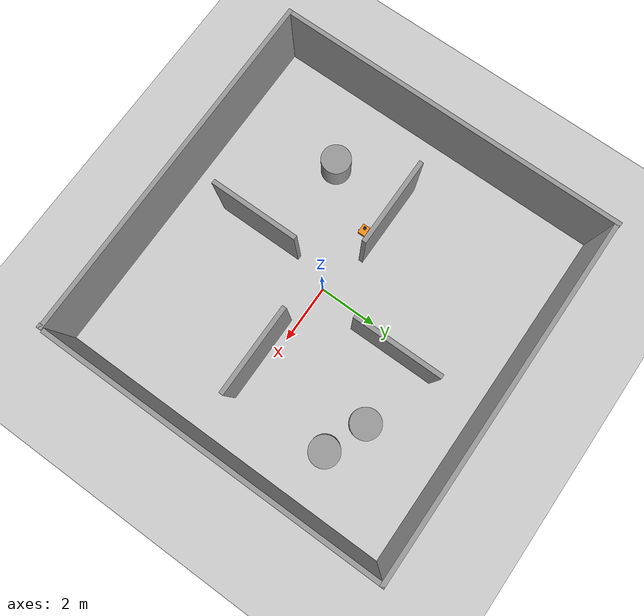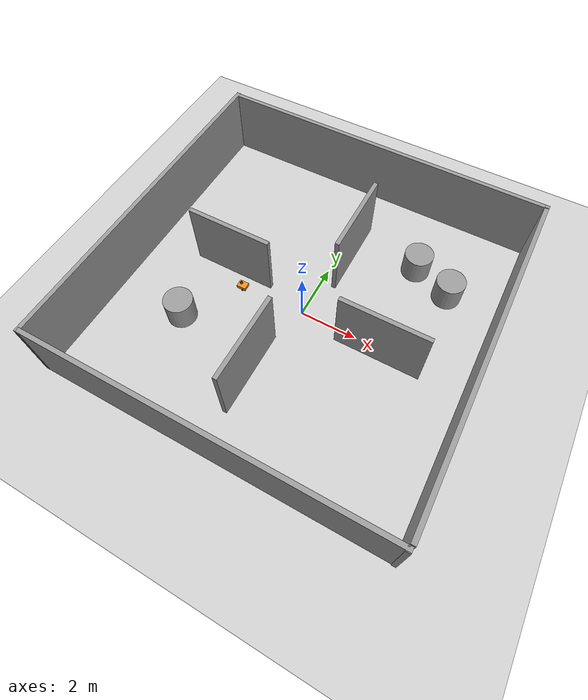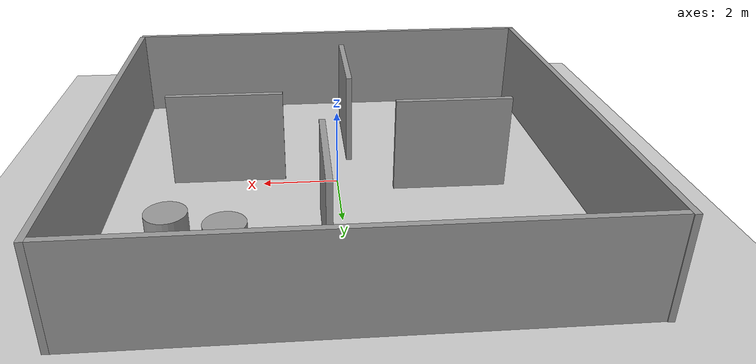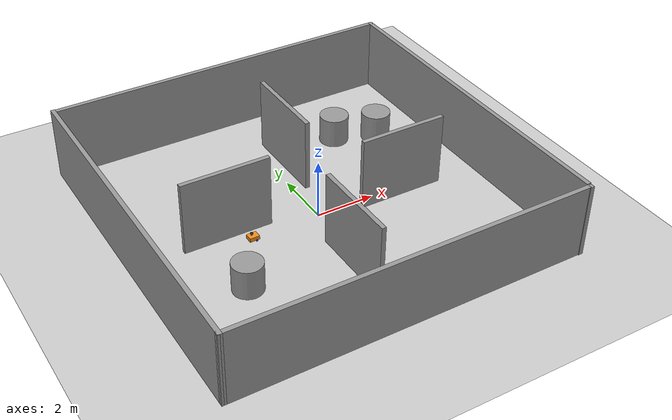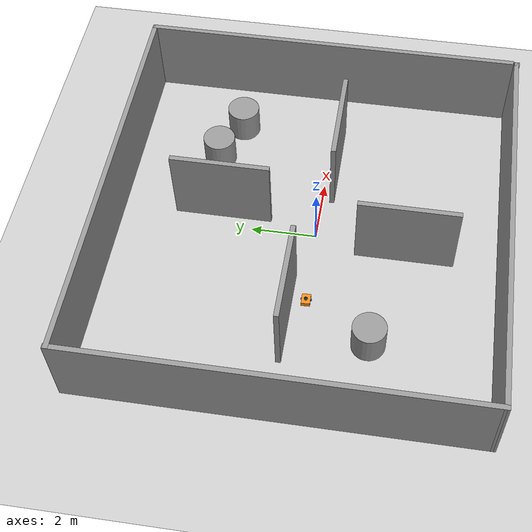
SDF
<sdf version="1.7">
 <world name="default">
  <light name="sun" type="directional">
   <pose>0 0 10 0 -0 0</pose>
   <diffuse>0.8 0.8 0.8 1</diffuse>
   <specular>0.2 0.2 0.2 1</specular>
   <attenuation>
    <range>1000</range>
    <constant>0.9</constant>
    <linear>0.01</linear>
    <quadratic>0.001</quadratic>
   </attenuation>
   <direction>-0.5 0.1 -0.9</direction>
   <spot><inner_angle>0</inner_angle><outer_angle>0</outer_angle><falloff>0</falloff></spot>
  </light>
  <model name="ground_plane">
   <static>1</static>
   <link name="link">
    <collision name="collision">
     <geometry><plane><normal>0 0 1</normal><size>100 100</size></plane></geometry>
     <surface><friction><ode><mu>100</mu><mu2>50</mu2></ode></friction></surface>
    </collision>
    <visual name="visual">
     <cast_shadows>0</cast_shadows>
     <geometry><plane><normal>0 0 1</normal><size>100 100</size></plane></geometry>
     <material>
      <script><uri>file://media/materials/scripts/gazebo.material</uri><name>Gazebo/Grey</name></script>
     </material>
    </visual>
   </link>
  </model>
  <gravity>0 0 -9.8</gravity>
  <magnetic_field>6e-06 2.3e-05 -4.2e-05</magnetic_field>
  <atmosphere type="adiabatic"/>
  <physics type="ode">
   <max_step_size>0.001</max_step_size>
   <real_time_factor>1</real_time_factor>
   <real_time_update_rate>1000</real_time_update_rate>
  </physics>
  <scene><ambient>0.4 0.4 0.4 1</ambient><background>0.7 0.7 0.7 1</background><shadows>1</shadows></scene>
  <audio><device>default</device></audio>
  <spherical_coordinates>
   <surface_model>EARTH_WGS84</surface_model>
   <latitude_deg>0</latitude_deg>
   <longitude_deg>0</longitude_deg>
   <elevation>0</elevation>
   <heading_deg>0</heading_deg>
  </spherical_coordinates>
  <model name="my_bot">
   <link name="base_link">
    <inertial>
     <pose>-0.067475 0 0.081098 0 -0 0</pose>
     <mass>0.61</mass>
     <inertia>
      <ixx>0.00561003</ixx>
      <ixy>0</ixy>
      <ixz>0.000453811</ixz>
      <iyy>0.00760348</iyy>
      <iyz>0</iyz>
      <izz>0.00797093</izz>
     </inertia>
    </inertial>
    <collision name="base_link_fixed_joint_lump__chassis_collision">
     <pose>-0.0585 0 0.059 0 -0 0</pose>
     <geometry><box><size>0.335 0.265 0.138</size></box></geometry>
    </collision>
    <collision name="base_link_fixed_joint_lump__caster_wheel_collision_1">
     <pose>-0.151 0 -0.023 0 -0 0</pose>
     <geometry><sphere><radius>0.01</radius></sphere></geometry>
     <surface><friction><ode><mu>0.001</mu><mu2>0.001</mu2></ode></friction></surface>
    </collision>
    <collision name="base_link_fixed_joint_lump__laser_frame_collision_2">
     <pose>-0.104 0 0.202 0 -0 0</pose>
     <geometry><cylinder><length>0.04</length><radius>0.05</radius></cylinder></geometry>
    </collision>
    <visual name="base_link_fixed_joint_lump__chassis_visual">
     <pose>-0.0585 0 0.059 0 -0 0</pose>
     <geometry><box><size>0.335 0.265 0.138</size></box></geometry>
     <material>
      <script><name>Gazebo/Orange</name><uri>file://media/materials/scripts/gazebo.material</uri></script>
     </material>
    </visual>
    <visual name="base_link_fixed_joint_lump__caster_wheel_visual_1">
     <pose>-0.151 0 -0.023 0 -0 0</pose>
     <geometry><sphere><radius>0.01</radius></sphere></geometry>
     <material>
      <script><name>Gazebo/White</name><uri>file://media/materials/scripts/gazebo.material</uri></script>
     </material>
    </visual>
    <visual name="base_link_fixed_joint_lump__face_link_visual_2">
     <pose>0.109 0.05 0.069 3.14159 1.57079 3.14159</pose>
     <geometry><cylinder><length>0.002</length><radius>0.01</radius></cylinder></geometry>
     <material>
      <script><name>Gazebo/Black</name><uri>file://media/materials/scripts/gazebo.material</uri></script>
     </material>
    </visual>
    <visual name="base_link_fixed_joint_lump__face_link_visual_3">
     <pose>0.109 -0.05 0.069 3.14159 1.57079 3.14159</pose>
     <geometry><cylinder><length>0.002</length><radius>0.01</radius></cylinder></geometry>
     <material>
      <script><name>Gazebo/Black</name><uri>file://media/materials/scripts/gazebo.material</uri></script>
     </material>
    </visual>
    <visual name="base_link_fixed_joint_lump__face_link_visual_4">
     <pose>0.098 0 0.059 0 1.5 0</pose>
     <geometry><cylinder><length>0.02</length><radius>0.05</radius></cylinder></geometry>
     <material>
      <script><name>Gazebo/Black</name><uri>file://media/materials/scripts/gazebo.material</uri></script>
     </material>
    </visual>
    <visual name="base_link_fixed_joint_lump__laser_frame_visual_5">
     <pose>-0.104 0 0.202 0 -0 0</pose>
     <geometry><cylinder><length>0.04</length><radius>0.05</radius></cylinder></geometry>
     <material>
      <script><name>Gazebo/Black</name><uri>file://media/materials/scripts/gazebo.material</uri></script>
     </material>
    </visual>
    <visual name="base_link_fixed_joint_lump__laser_frame_visual_6">
     <pose>-0.104 0 0.152 0 -0 0</pose>
     <geometry><cylinder><length>0.1</length><radius>0.01</radius></cylinder></geometry>
     <material>
      <script><name>Gazebo/Black</name><uri>file://media/materials/scripts/gazebo.material</uri></script>
     </material>
    </visual>
    <sensor name="laser" type="ray">
     <visualize>0</visualize>
     <update_rate>10</update_rate>
     <ray>
      <scan>
       <horizontal>
        <samples>360</samples>
        <min_angle>-3.14</min_angle>
        <max_angle>3.14</max_angle>
        <resolution>1</resolution>
       </horizontal>
       <vertical><samples>1</samples><min_angle>0</min_angle><max_angle>0</max_angle></vertical>
      </scan>
      <range><min>0.3</min><max>12</max></range>
     </ray>
     <plugin name="laser_controller" filename="libgazebo_ros_ray_sensor.so">
      <ros><argument>~/out:=scan</argument></ros>
      <output_type>sensor_msgs/LaserScan</output_type>
      <frame_name>laser_frame</frame_name>
     </plugin>
     <pose>-0.104 0 0.202 0 -0 0</pose>
    </sensor>
   </link>
   <joint name="left_wheel_joint" type="revolute">
    <pose relative_to="base_link">0 0.1485 0 -1.5708 0 0</pose>
    <parent>base_link</parent>
    <child>left_wheel</child>
    <axis>
     <xyz>0 0 1</xyz>
     <limit><lower>-1e+16</lower><upper>1e+16</upper></limit>
     <dynamics><spring_reference>0</spring_reference><spring_stiffness>0</spring_stiffness></dynamics>
    </axis>
   </joint>
   <link name="left_wheel">
    <pose relative_to="left_wheel_joint">0 0 0 0 -0 0</pose>
    <inertial>
     <mass>0.05</mass>
     <inertia>
      <ixx>1.64292e-05</ixx>
      <ixy>0</ixy>
      <ixz>0</ixz>
      <iyy>1.64292e-05</iyy>
      <iyz>0</iyz>
      <izz>2.7225e-05</izz>
     </inertia>
    </inertial>
    <collision name="left_wheel_collision">
     <geometry><sphere><radius>0.033</radius></sphere></geometry>
    </collision>
    <visual name="left_wheel_visual">
     <geometry><cylinder><length>0.026</length><radius>0.033</radius></cylinder></geometry>
     <material>
      <script><name>Gazebo/Blue</name><uri>file://media/materials/scripts/gazebo.material</uri></script>
     </material>
    </visual>
   </link>
   <joint name="right_wheel_joint" type="revolute">
    <pose relative_to="base_link">0 -0.1485 0 1.5708 -0 0</pose>
    <parent>base_link</parent>
    <child>right_wheel</child>
    <axis>
     <xyz>0 0 -1</xyz>
     <limit><lower>-1e+16</lower><upper>1e+16</upper></limit>
     <dynamics><spring_reference>0</spring_reference><spring_stiffness>0</spring_stiffness></dynamics>
    </axis>
   </joint>
   <link name="right_wheel">
    <pose relative_to="right_wheel_joint">0 0 0 0 -0 0</pose>
    <inertial>
     <mass>0.05</mass>
     <inertia>
      <ixx>1.64292e-05</ixx>
      <ixy>0</ixy>
      <ixz>0</ixz>
      <iyy>1.64292e-05</iyy>
      <iyz>0</iyz>
      <izz>2.7225e-05</izz>
     </inertia>
    </inertial>
    <collision name="right_wheel_collision">
     <geometry><sphere><radius>0.033</radius></sphere></geometry>
    </collision>
    <visual name="right_wheel_visual">
     <geometry><cylinder><length>0.026</length><radius>0.033</radius></cylinder></geometry>
     <material>
      <script><name>Gazebo/Blue</name><uri>file://media/materials/scripts/gazebo.material</uri></script>
     </material>
    </visual>
   </link>
   <static>0</static>
   <plugin name="gazebo_ros2_control" filename="libgazebo_ros2_control.so">
    <parameters>/root/Capstone/ros2_ws/install/capstone/share/capstone/config/my_controllers.yaml</parameters>
    <parameters>/root/Capstone/ros2_ws/install/capstone/share/capstone/config/gaz_ros2_ctl_use_sim.yaml</parameters>
   </plugin>
   <pose>-2.29861 -0.033958 0.032997 -1.7e-05 1.8e-05 0.023703</pose>
  </model>
  <model name="my_wrold">
   <pose>-0.157998 0.278963 0 0 -0 0</pose>
   <link name="Wall_0">
    <collision name="Wall_0_Collision">
     <geometry><box><size>12.208 0.15 2.5</size></box></geometry>
     <pose>0 0 1.25 0 -0 0</pose>
    </collision>
    <visual name="Wall_0_Visual">
     <pose>0 0 1.25 0 -0 0</pose>
     <geometry><box><size>12.208 0.15 2.5</size></box></geometry>
     <material>
      <script><uri>file://media/materials/scripts/gazebo.material</uri><name>Gazebo/Grey</name></script>
      <ambient>1 1 1 1</ambient>
     </material>
     <meta><layer>0</layer></meta>
    </visual>
    <pose>-0.020881 -5.89822 0 0 -0 0.004414</pose>
   </link>
   <link name="Wall_1">
    <collision name="Wall_1_Collision">
     <geometry><box><size>0.15 0.15 2.5</size></box></geometry>
     <pose>0 0 1.25 0 -0 0</pose>
    </collision>
    <visual name="Wall_1_Visual">
     <pose>0 0 1.25 0 -0 0</pose>
     <geometry><box><size>0.15 0.15 2.5</size></box></geometry>
     <material>
      <script><uri>file://media/materials/scripts/gazebo.material</uri><name>Gazebo/Grey</name></script>
      <ambient>1 1 1 1</ambient>
     </material>
     <meta><layer>0</layer></meta>
    </visual>
    <pose>6.00807 -5.89474 0 0 -0 0</pose>
   </link>
   <link name="Wall_12">
    <collision name="Wall_12_Collision">
     <geometry><box><size>3 0.15 2.5</size></box></geometry>
     <pose>0 0 1.25 0 -0 0</pose>
    </collision>
    <visual name="Wall_12_Visual">
     <pose>0 0 1.25 0 -0 0</pose>
     <geometry><box><size>3 0.15 2.5</size></box></geometry>
     <material>
      <script><uri>file://media/materials/scripts/gazebo.material</uri><name>Gazebo/Grey</name></script>
      <ambient>1 1 1 1</ambient>
     </material>
     <meta><layer>0</layer></meta>
    </visual>
    <pose>3.05791 -0.583276 0 0 -0 3.14159</pose>
   </link>
   <link name="Wall_14">
    <collision name="Wall_14_Collision">
     <geometry><box><size>3 0.15 2.5</size></box></geometry>
     <pose>0 0 1.25 0 -0 0</pose>
    </collision>
    <visual name="Wall_14_Visual">
     <pose>0 0 1.25 0 -0 0</pose>
     <geometry><box><size>3 0.15 2.5</size></box></geometry>
     <material>
      <script><uri>file://media/materials/scripts/gazebo.material</uri><name>Gazebo/Grey</name></script>
      <ambient>1 1 1 1</ambient>
     </material>
     <meta><layer>0</layer></meta>
    </visual>
    <pose>-2.80978 0.173245 0 0 -0 3.14159</pose>
   </link>
   <link name="Wall_16">
    <collision name="Wall_16_Collision">
     <geometry><box><size>3 0.15 2.5</size></box></geometry>
     <pose>0 0 1.25 0 -0 0</pose>
    </collision>
    <visual name="Wall_16_Visual">
     <pose>0 0 1.25 0 -0 0</pose>
     <geometry><box><size>3 0.15 2.5</size></box></geometry>
     <material>
      <script><uri>file://media/materials/scripts/gazebo.material</uri><name>Gazebo/Grey</name></script>
      <ambient>1 1 1 1</ambient>
     </material>
     <meta><layer>0</layer></meta>
    </visual>
    <pose>0.61516 2.68464 0 0 -0 1.5708</pose>
   </link>
   <link name="Wall_18">
    <collision name="Wall_18_Collision">
     <geometry><box><size>3 0.15 2.5</size></box></geometry>
     <pose>0 0 1.25 0 -0 0</pose>
    </collision>
    <visual name="Wall_18_Visual">
     <pose>0 0 1.25 0 -0 0</pose>
     <geometry><box><size>3 0.15 2.5</size></box></geometry>
     <material>
      <script><uri>file://media/materials/scripts/gazebo.material</uri><name>Gazebo/Grey</name></script>
      <ambient>1 1 1 1</ambient>
     </material>
     <meta><layer>0</layer></meta>
    </visual>
    <pose>-0.257811 -3.01436 0 0 -0 -1.5708</pose>
   </link>
   <link name="Wall_5">
    <collision name="Wall_5_Collision">
     <geometry><box><size>12 0.15 2.5</size></box></geometry>
     <pose>0 0 1.25 0 -0 0</pose>
    </collision>
    <visual name="Wall_5_Visual">
     <pose>0 0 1.25 0 -0 0</pose>
     <geometry><box><size>12 0.15 2.5</size></box></geometry>
     <material>
      <script><uri>file://media/materials/scripts/gazebo.material</uri><name>Gazebo/Grey</name></script>
      <ambient>1 1 1 1</ambient>
     </material>
     <meta><layer>0</layer></meta>
    </visual>
    <pose>-6.04983 0.000165 0 0 -0 1.5708</pose>
   </link>
   <link name="Wall_6">
    <collision name="Wall_6_Collision">
     <geometry><box><size>12.25 0.15 2.5</size></box></geometry>
     <pose>0 0 1.25 0 -0 0</pose>
    </collision>
    <visual name="Wall_6_Visual">
     <pose>0 0 1.25 0 -0 0</pose>
     <geometry><box><size>12.25 0.15 2.5</size></box></geometry>
     <material>
      <script><uri>file://media/materials/scripts/gazebo.material</uri><name>Gazebo/Grey</name></script>
      <ambient>1 1 1 1</ambient>
     </material>
     <meta><layer>0</layer></meta>
    </visual>
    <pose>0.000165 5.90203 0 0 -0 0</pose>
   </link>
   <link name="Wall_7">
    <collision name="Wall_7_Collision">
     <geometry><box><size>11.75 0.15 2.5</size></box></geometry>
     <pose>0 0 1.25 0 -0 0</pose>
    </collision>
    <visual name="Wall_7_Visual">
     <pose>0 0 1.25 0 -0 0</pose>
     <geometry><box><size>11.75 0.15 2.5</size></box></geometry>
     <material>
      <script><uri>file://media/materials/scripts/gazebo.material</uri><name>Gazebo/Grey</name></script>
      <ambient>1 1 1 1</ambient>
     </material>
     <meta><layer>0</layer></meta>
    </visual>
    <pose>6.05016 0.102034 0 0 -0 -1.5708</pose>
   </link>
   <static>1</static>
  </model>
  <model name="Untitled">
   <link name="link_0">
    <inertial>
     <mass>1</mass>
     <inertia><ixx>0.145833</ixx><ixy>0</ixy><ixz>0</ixz><iyy>0.145833</iyy><iyz>0</iyz><izz>0.125</izz></inertia>
    </inertial>
    <pose>-4.6356 -3.49433 0 0 -0 0</pose>
    <visual name="visual">
     <geometry><cylinder><radius>0.5</radius><length>1</length></cylinder></geometry>
     <material>
      <lighting>1</lighting>
      <script><uri>file://media/materials/scripts/gazebo.material</uri><name>Gazebo/Grey</name></script>
      <shader type="pixel"/>
     </material>
    </visual>
    <collision name="collision">
     <geometry><cylinder><radius>0.5</radius><length>1</length></cylinder></geometry>
     <surface>
      <friction>
       <ode><mu>1</mu><mu2>1</mu2><fdir1>0 0 0</fdir1><slip1>0</slip1><slip2>0</slip2></ode>
       <torsional>
        <coefficient>1</coefficient>
        <patch_radius>0</patch_radius>
        <surface_radius>0</surface_radius>
        <use_patch_radius>1</use_patch_radius>
        <ode><slip>0</slip></ode>
       </torsional>
      </friction>
      <bounce><restitution_coefficient>0</restitution_coefficient><threshold>1e+06</threshold></bounce>
      <contact>
       <collide_without_contact>0</collide_without_contact>
       <collide_without_contact_bitmask>1</collide_without_contact_bitmask>
       <collide_bitmask>1</collide_bitmask>
       <ode>
        <soft_cfm>0</soft_cfm>
        <soft_erp>0.2</soft_erp>
        <kp>1e+13</kp>
        <kd>1</kd>
        <max_vel>0.01</max_vel>
        <min_depth>0</min_depth>
       </ode>
       <bullet>
        <split_impulse>1</split_impulse>
        <split_impulse_penetration_threshold>-0.01</split_impulse_penetration_threshold>
        <soft_cfm>0</soft_cfm>
        <soft_erp>0.2</soft_erp>
        <kp>1e+13</kp>
        <kd>1</kd>
       </bullet>
      </contact>
     </surface>
    </collision>
   </link>
   <link name="link_1">
    <inertial>
     <mass>1</mass>
     <inertia><ixx>0.145833</ixx><ixy>0</ixy><ixz>0</ixz><iyy>0.145833</iyy><iyz>0</iyz><izz>0.125</izz></inertia>
    </inertial>
    <pose>1.63693 2.01821 0 0 -0 0</pose>
    <visual name="visual">
     <geometry><cylinder><radius>0.5</radius><length>1</length></cylinder></geometry>
     <material>
      <lighting>1</lighting>
      <script><uri>file://media/materials/scripts/gazebo.material</uri><name>Gazebo/Grey</name></script>
      <shader type="pixel"/>
     </material>
    </visual>
    <collision name="collision">
     <geometry><cylinder><radius>0.5</radius><length>1</length></cylinder></geometry>
     <surface>
      <friction>
       <ode><mu>1</mu><mu2>1</mu2><fdir1>0 0 0</fdir1><slip1>0</slip1><slip2>0</slip2></ode>
       <torsional>
        <coefficient>1</coefficient>
        <patch_radius>0</patch_radius>
        <surface_radius>0</surface_radius>
        <use_patch_radius>1</use_patch_radius>
        <ode><slip>0</slip></ode>
       </torsional>
      </friction>
      <bounce><restitution_coefficient>0</restitution_coefficient><threshold>1e+06</threshold></bounce>
      <contact>
       <collide_without_contact>0</collide_without_contact>
       <collide_without_contact_bitmask>1</collide_without_contact_bitmask>
       <collide_bitmask>1</collide_bitmask>
       <ode>
        <soft_cfm>0</soft_cfm>
        <soft_erp>0.2</soft_erp>
        <kp>1e+13</kp>
        <kd>1</kd>
        <max_vel>0.01</max_vel>
        <min_depth>0</min_depth>
       </ode>
       <bullet>
        <split_impulse>1</split_impulse>
        <split_impulse_penetration_threshold>-0.01</split_impulse_penetration_threshold>
        <soft_cfm>0</soft_cfm>
        <soft_erp>0.2</soft_erp>
        <kp>1e+13</kp>
        <kd>1</kd>
       </bullet>
      </contact>
     </surface>
    </collision>
   </link>
   <link name="link_2">
    <inertial>
     <mass>1</mass>
     <inertia><ixx>0.145833</ixx><ixy>0</ixy><ixz>0</ixz><iyy>0.145833</iyy><iyz>0</iyz><izz>0.125</izz></inertia>
    </inertial>
    <pose>2.99867 1.47613 0 0 -0 0</pose>
    <visual name="visual">
     <geometry><cylinder><radius>0.5</radius><length>1</length></cylinder></geometry>
     <material>
      <lighting>1</lighting>
      <script><uri>file://media/materials/scripts/gazebo.material</uri><name>Gazebo/Grey</name></script>
      <shader type="pixel"/>
     </material>
    </visual>
    <collision name="collision">
     <geometry><cylinder><radius>0.5</radius><length>1</length></cylinder></geometry>
     <surface>
      <friction>
       <ode><mu>1</mu><mu2>1</mu2><fdir1>0 0 0</fdir1><slip1>0</slip1><slip2>0</slip2></ode>
       <torsional>
        <coefficient>1</coefficient>
        <patch_radius>0</patch_radius>
        <surface_radius>0</surface_radius>
        <use_patch_radius>1</use_patch_radius>
        <ode><slip>0</slip></ode>
       </torsional>
      </friction>
      <bounce><restitution_coefficient>0</restitution_coefficient><threshold>1e+06</threshold></bounce>
      <contact>
       <collide_without_contact>0</collide_without_contact>
       <collide_without_contact_bitmask>1</collide_without_contact_bitmask>
       <collide_bitmask>1</collide_bitmask>
       <ode>
        <soft_cfm>0</soft_cfm>
        <soft_erp>0.2</soft_erp>
        <kp>1e+13</kp>
        <kd>1</kd>
        <max_vel>0.01</max_vel>
        <min_depth>0</min_depth>
       </ode>
       <bullet>
        <split_impulse>1</split_impulse>
        <split_impulse_penetration_threshold>-0.01</split_impulse_penetration_threshold>
        <soft_cfm>0</soft_cfm>
        <soft_erp>0.2</soft_erp>
        <kp>1e+13</kp>
        <kd>1</kd>
       </bullet>
      </contact>
     </surface>
    </collision>
   </link>
   <static>0</static>
   <pose>1.07801 1.49369 0.499998 -2e-06 -2e-06 0</pose>
  </model>
 </world>
</sdf>
